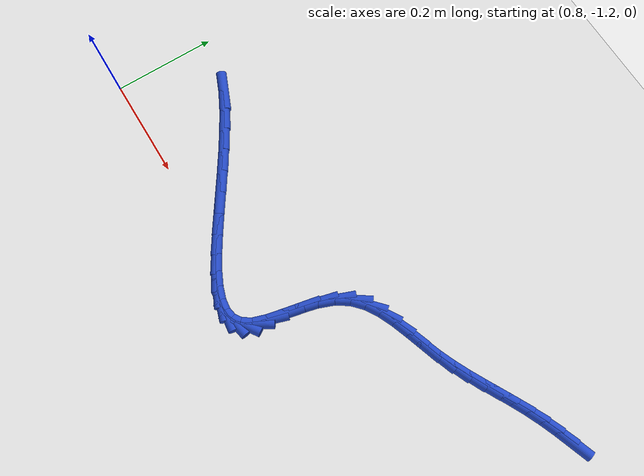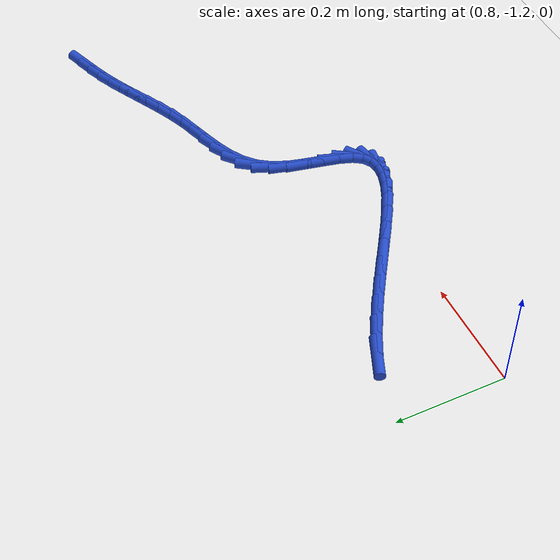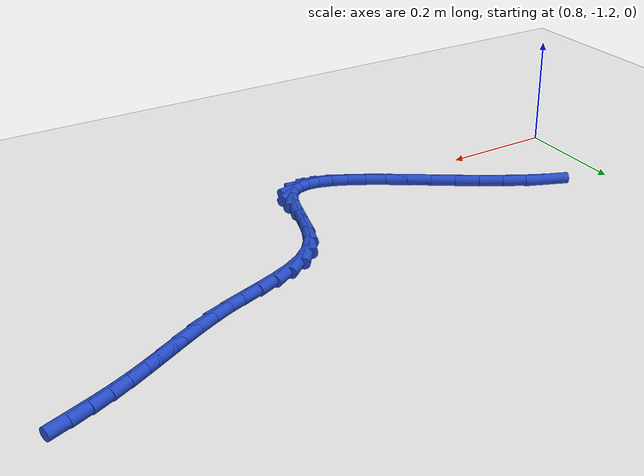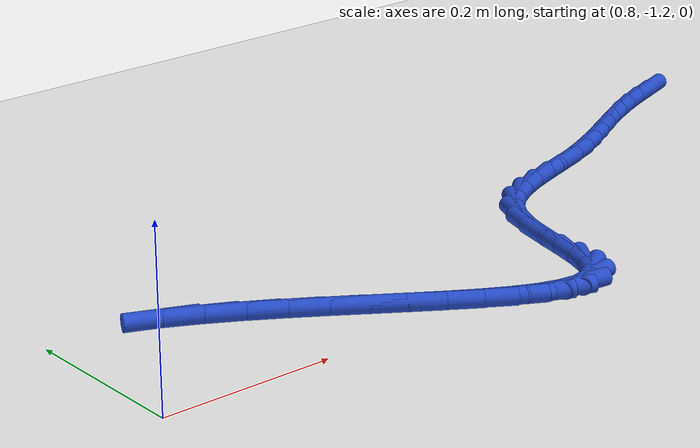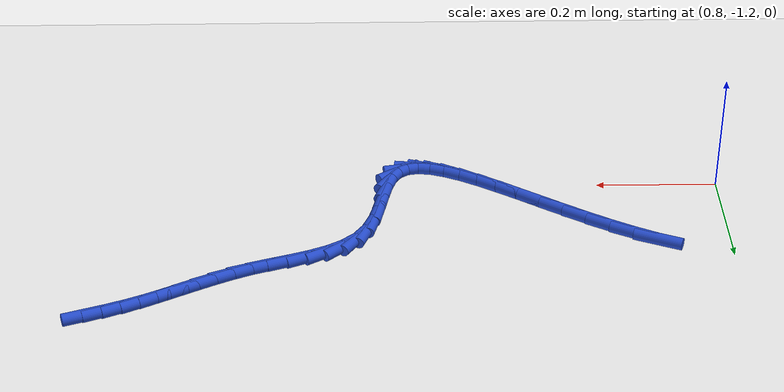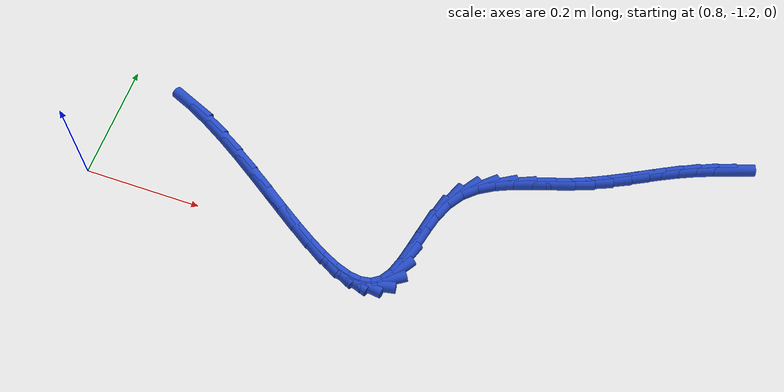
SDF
<sdf version="1.6">
 <world name="default">
  <model name="ground_plane">
   <static>1</static>
   <link name="link">
    <collision name="collision">
     <geometry><plane><normal>0 0 1</normal><size>100 100</size></plane></geometry>
     <surface><friction><ode><mu>100</mu><mu2>50</mu2></ode></friction></surface>
    </collision>
    <visual name="visual">
     <cast_shadows>0</cast_shadows>
     <geometry><plane><normal>0 0 1</normal><size>100 100</size></plane></geometry>
     <material>
      <script><uri>file://media/materials/scripts/gazebo.material</uri><name>Gazebo/WhiteGlow</name></script>
     </material>
    </visual>
   </link>
  </model>
  <model name="line">
   <link name="link_186">
    <pose>1.8090403899290732 -0.8524829123842519 0.01 0 1.57 0.3405348940985678</pose>
    <collision name="collision">
     <geometry><cylinder><radius>0.01</radius><length>0.08</length></cylinder></geometry>
    </collision>
    <visual name="visual">
     <material>
      <script><name>Gazebo/Blue</name><uri>file://media/materials/scripts/gazebo.material</uri></script>
     </material>
     <geometry><cylinder><radius>0.01</radius><length>0.08</length></cylinder></geometry>
    </visual>
   </link>
   <link name="link_187">
    <pose>1.7807709670203962 -0.8624998662626 0.01 0 1.57 0.37596260459092373</pose>
    <collision name="collision">
     <geometry><cylinder><radius>0.01</radius><length>0.08</length></cylinder></geometry>
    </collision>
    <visual name="visual">
     <material>
      <script><name>Gazebo/Blue</name><uri>file://media/materials/scripts/gazebo.material</uri></script>
     </material>
     <geometry><cylinder><radius>0.01</radius><length>0.08</length></cylinder></geometry>
    </visual>
   </link>
   <link name="link_188">
    <pose>1.75309380789799 -0.8734251134591424 0.01 0 1.57 0.42039869188526496</pose>
    <collision name="collision">
     <geometry><cylinder><radius>0.01</radius><length>0.08</length></cylinder></geometry>
    </collision>
    <visual name="visual">
     <material>
      <script><name>Gazebo/Blue</name><uri>file://media/materials/scripts/gazebo.material</uri></script>
     </material>
     <geometry><cylinder><radius>0.01</radius><length>0.08</length></cylinder></geometry>
    </visual>
   </link>
   <link name="link_189">
    <pose>1.726141239357196 -0.8854742816847162 0.01 0 1.57 0.46108970667561944</pose>
    <collision name="collision">
     <geometry><cylinder><radius>0.01</radius><length>0.08</length></cylinder></geometry>
    </collision>
    <visual name="visual">
     <material>
      <script><name>Gazebo/Blue</name><uri>file://media/materials/scripts/gazebo.material</uri></script>
     </material>
     <geometry><cylinder><radius>0.01</radius><length>0.08</length></cylinder></geometry>
    </visual>
   </link>
   <link name="link_190">
    <pose>1.6998155007914075 -0.898553084965715 0.01 0 1.57 0.4839831667987837</pose>
    <collision name="collision">
     <geometry><cylinder><radius>0.01</radius><length>0.08</length></cylinder></geometry>
    </collision>
    <visual name="visual">
     <material>
      <script><name>Gazebo/Blue</name><uri>file://media/materials/scripts/gazebo.material</uri></script>
     </material>
     <geometry><cylinder><radius>0.01</radius><length>0.08</length></cylinder></geometry>
    </visual>
   </link>
   <link name="link_191">
    <pose>1.6737767900728406 -0.9122412221752421 0.01 0 1.57 0.4881682200880346</pose>
    <collision name="collision">
     <geometry><cylinder><radius>0.01</radius><length>0.08</length></cylinder></geometry>
    </collision>
    <visual name="visual">
     <material>
      <script><name>Gazebo/Blue</name><uri>file://media/materials/scripts/gazebo.material</uri></script>
     </material>
     <geometry><cylinder><radius>0.01</radius><length>0.08</length></cylinder></geometry>
    </visual>
   </link>
   <link name="link_192">
    <pose>1.647673796580632 -0.9261028909487753 0.01 0 1.57 0.47385499838906864</pose>
    <collision name="collision">
     <geometry><cylinder><radius>0.01</radius><length>0.08</length></cylinder></geometry>
    </collision>
    <visual name="visual">
     <material>
      <script><name>Gazebo/Blue</name><uri>file://media/materials/scripts/gazebo.material</uri></script>
     </material>
     <geometry><cylinder><radius>0.01</radius><length>0.08</length></cylinder></geometry>
    </visual>
   </link>
   <link name="link_193">
    <pose>1.6211552096939186 -0.9397022889217923 0.01 0 1.57 0.44167411058087136</pose>
    <collision name="collision">
     <geometry><cylinder><radius>0.01</radius><length>0.08</length></cylinder></geometry>
    </collision>
    <visual name="visual">
     <material>
      <script><name>Gazebo/Blue</name><uri>file://media/materials/scripts/gazebo.material</uri></script>
     </material>
     <geometry><cylinder><radius>0.01</radius><length>0.08</length></cylinder></geometry>
    </visual>
   </link>
   <link name="link_194">
    <pose>1.5938697187918376 -0.9526036137297713 0.01 0 1.57 0.39276667069665266</pose>
    <collision name="collision">
     <geometry><cylinder><radius>0.01</radius><length>0.08</length></cylinder></geometry>
    </collision>
    <visual name="visual">
     <material>
      <script><name>Gazebo/Blue</name><uri>file://media/materials/scripts/gazebo.material</uri></script>
     </material>
     <geometry><cylinder><radius>0.01</radius><length>0.08</length></cylinder></geometry>
    </visual>
   </link>
   <link name="link_195">
    <pose>1.565466013253527 -0.9643710630081899 0.01 0 1.57 0.3367327698991211</pose>
    <collision name="collision">
     <geometry><cylinder><radius>0.01</radius><length>0.08</length></cylinder></geometry>
    </collision>
    <visual name="visual">
     <material>
      <script><name>Gazebo/Blue</name><uri>file://media/materials/scripts/gazebo.material</uri></script>
     </material>
     <geometry><cylinder><radius>0.01</radius><length>0.08</length></cylinder></geometry>
    </visual>
   </link>
   <link name="link_196">
    <pose>1.5357714834628167 -0.9747660800869554 0.01 0 1.57 0.31479687146298013</pose>
    <collision name="collision">
     <geometry><cylinder><radius>0.01</radius><length>0.08</length></cylinder></geometry>
    </collision>
    <visual name="visual">
     <material>
      <script><name>Gazebo/Blue</name><uri>file://media/materials/scripts/gazebo.material</uri></script>
     </material>
     <geometry><cylinder><radius>0.01</radius><length>0.08</length></cylinder></geometry>
    </visual>
   </link>
   <link name="link_197">
    <pose>1.5055662108398367 -0.9846016648071039 0.01 0 1.57 0.33881668592918013</pose>
    <collision name="collision">
     <geometry><cylinder><radius>0.01</radius><length>0.08</length></cylinder></geometry>
    </collision>
    <visual name="visual">
     <material>
      <script><name>Gazebo/Blue</name><uri>file://media/materials/scripts/gazebo.material</uri></script>
     </material>
     <geometry><cylinder><radius>0.01</radius><length>0.08</length></cylinder></geometry>
    </visual>
   </link>
   <link name="link_198">
    <pose>1.4759464820956838 -0.9950398364922757 0.01 0 1.57 0.41181750225858765</pose>
    <collision name="collision">
     <geometry><cylinder><radius>0.01</radius><length>0.08</length></cylinder></geometry>
    </collision>
    <visual name="visual">
     <material>
      <script><name>Gazebo/Blue</name><uri>file://media/materials/scripts/gazebo.material</uri></script>
     </material>
     <geometry><cylinder><radius>0.01</radius><length>0.08</length></cylinder></geometry>
    </visual>
   </link>
   <link name="link_199">
    <pose>1.448008792546071 -1.007242844718662 0.01 0 1.57 0.5414301348034276</pose>
    <collision name="collision">
     <geometry><cylinder><radius>0.01</radius><length>0.08</length></cylinder></geometry>
    </collision>
    <visual name="visual">
     <material>
      <script><name>Gazebo/Blue</name><uri>file://media/materials/scripts/gazebo.material</uri></script>
     </material>
     <geometry><cylinder><radius>0.01</radius><length>0.08</length></cylinder></geometry>
    </visual>
   </link>
   <link name="link_200">
    <pose>1.4228496375067106 -1.022372939062456 0.01 0 1.57 0.7344665954307845</pose>
    <collision name="collision">
     <geometry><cylinder><radius>0.01</radius><length>0.08</length></cylinder></geometry>
    </collision>
    <visual name="visual">
     <material>
      <script><name>Gazebo/Blue</name><uri>file://media/materials/scripts/gazebo.material</uri></script>
     </material>
     <geometry><cylinder><radius>0.01</radius><length>0.08</length></cylinder></geometry>
    </visual>
   </link>
   <link name="link_201">
    <pose>1.4015655122933177 -1.0415923690998499 0.01 0 1.57 0.9807676713733573</pose>
    <collision name="collision">
     <geometry><cylinder><radius>0.01</radius><length>0.08</length></cylinder></geometry>
    </collision>
    <visual name="visual">
     <material>
      <script><name>Gazebo/Blue</name><uri>file://media/materials/scripts/gazebo.material</uri></script>
     </material>
     <geometry><cylinder><radius>0.01</radius><length>0.08</length></cylinder></geometry>
    </visual>
   </link>
   <link name="link_202">
    <pose>1.3852140025979416 -1.0660122904480616 0.01 0 1.57 1.1932963166919919</pose>
    <collision name="collision">
     <geometry><cylinder><radius>0.01</radius><length>0.08</length></cylinder></geometry>
    </collision>
    <visual name="visual">
     <material>
      <script><name>Gazebo/Blue</name><uri>file://media/materials/scripts/gazebo.material</uri></script>
     </material>
     <geometry><cylinder><radius>0.01</radius><length>0.08</length></cylinder></geometry>
    </visual>
   </link>
   <link name="link_203">
    <pose>1.373653053310556 -1.095168556982549 0.01 0 1.57 1.313565672999608</pose>
    <collision name="collision">
     <geometry><cylinder><radius>0.01</radius><length>0.08</length></cylinder></geometry>
    </collision>
    <visual name="visual">
     <material>
      <script><name>Gazebo/Blue</name><uri>file://media/materials/scripts/gazebo.material</uri></script>
     </material>
     <geometry><cylinder><radius>0.01</radius><length>0.08</length></cylinder></geometry>
    </visual>
   </link>
   <link name="link_204">
    <pose>1.365342402619029 -1.126760975114106 0.01 0 1.57 1.3626435327485726</pose>
    <collision name="collision">
     <geometry><cylinder><radius>0.01</radius><length>0.08</length></cylinder></geometry>
    </collision>
    <visual name="visual">
     <material>
      <script><name>Gazebo/Blue</name><uri>file://media/materials/scripts/gazebo.material</uri></script>
     </material>
     <geometry><cylinder><radius>0.01</radius><length>0.08</length></cylinder></geometry>
    </visual>
   </link>
   <link name="link_205">
    <pose>1.3586628736141328 -1.1583857243264557 0.01 0 1.57 1.3466984402656768</pose>
    <collision name="collision">
     <geometry><cylinder><radius>0.01</radius><length>0.08</length></cylinder></geometry>
    </collision>
    <visual name="visual">
     <material>
      <script><name>Gazebo/Blue</name><uri>file://media/materials/scripts/gazebo.material</uri></script>
     </material>
     <geometry><cylinder><radius>0.01</radius><length>0.08</length></cylinder></geometry>
    </visual>
   </link>
   <link name="link_206">
    <pose>1.3519952893866405 -1.1876389841033235 0.01 0 1.57 1.2448051306956611</pose>
    <collision name="collision">
     <geometry><cylinder><radius>0.01</radius><length>0.08</length></cylinder></geometry>
    </collision>
    <visual name="visual">
     <material>
      <script><name>Gazebo/Blue</name><uri>file://media/materials/scripts/gazebo.material</uri></script>
     </material>
     <geometry><cylinder><radius>0.01</radius><length>0.08</length></cylinder></geometry>
    </visual>
   </link>
   <link name="link_207">
    <pose>1.3437204730273238 -1.2121169339284326 0.01 0 1.57 0.9922825573646661</pose>
    <collision name="collision">
     <geometry><cylinder><radius>0.01</radius><length>0.08</length></cylinder></geometry>
    </collision>
    <visual name="visual">
     <material>
      <script><name>Gazebo/Blue</name><uri>file://media/materials/scripts/gazebo.material</uri></script>
     </material>
     <geometry><cylinder><radius>0.01</radius><length>0.08</length></cylinder></geometry>
    </visual>
   </link>
   <link name="link_208">
    <pose>1.33231689613271 -1.2295790594457912 0.01 0 1.57 0.5905522786497456</pose>
    <collision name="collision">
     <geometry><cylinder><radius>0.01</radius><length>0.08</length></cylinder></geometry>
    </collision>
    <visual name="visual">
     <material>
      <script><name>Gazebo/Blue</name><uri>file://media/materials/scripts/gazebo.material</uri></script>
     </material>
     <geometry><cylinder><radius>0.01</radius><length>0.08</length></cylinder></geometry>
    </visual>
   </link>
   <link name="link_209">
    <pose>1.317354065386064 -1.2396094799624875 0.01 0 1.57 0.180078371744156</pose>
    <collision name="collision">
     <geometry><cylinder><radius>0.01</radius><length>0.08</length></cylinder></geometry>
    </collision>
    <visual name="visual">
     <material>
      <script><name>Gazebo/Blue</name><uri>file://media/materials/scripts/gazebo.material</uri></script>
     </material>
     <geometry><cylinder><radius>0.01</radius><length>0.08</length></cylinder></geometry>
    </visual>
   </link>
   <link name="link_210">
    <pose>1.299084978247817 -1.2429353763567592 0.01 0 1.57 -0.12296375834334676</pose>
    <collision name="collision">
     <geometry><cylinder><radius>0.01</radius><length>0.08</length></cylinder></geometry>
    </collision>
    <visual name="visual">
     <material>
      <script><name>Gazebo/Blue</name><uri>file://media/materials/scripts/gazebo.material</uri></script>
     </material>
     <geometry><cylinder><radius>0.01</radius><length>0.08</length></cylinder></geometry>
    </visual>
   </link>
   <link name="link_211">
    <pose>1.277773141149217 -1.2403015045804133 0.01 0 1.57 -0.31495567398860314</pose>
    <collision name="collision">
     <geometry><cylinder><radius>0.01</radius><length>0.08</length></cylinder></geometry>
    </collision>
    <visual name="visual">
     <material>
      <script><name>Gazebo/Blue</name><uri>file://media/materials/scripts/gazebo.material</uri></script>
     </material>
     <geometry><cylinder><radius>0.01</radius><length>0.08</length></cylinder></geometry>
    </visual>
   </link>
   <link name="link_212">
    <pose>1.2536820605215138 -1.2324526205852575 0.01 0 1.57 -0.43361766743839036</pose>
    <collision name="collision">
     <geometry><cylinder><radius>0.01</radius><length>0.08</length></cylinder></geometry>
    </collision>
    <visual name="visual">
     <material>
      <script><name>Gazebo/Blue</name><uri>file://media/materials/scripts/gazebo.material</uri></script>
     </material>
     <geometry><cylinder><radius>0.01</radius><length>0.08</length></cylinder></geometry>
    </visual>
   </link>
   <link name="link_213">
    <pose>1.2270752427959546 -1.2201334803230985 0.01 0 1.57 -0.507411849820914</pose>
    <collision name="collision">
     <geometry><cylinder><radius>0.01</radius><length>0.08</length></cylinder></geometry>
    </collision>
    <visual name="visual">
     <material>
      <script><name>Gazebo/Blue</name><uri>file://media/materials/scripts/gazebo.material</uri></script>
     </material>
     <geometry><cylinder><radius>0.01</radius><length>0.08</length></cylinder></geometry>
    </visual>
   </link>
   <link name="link_214">
    <pose>1.1982161944037881 -1.204088839745744 0.01 0 1.57 -0.5526452195897019</pose>
    <collision name="collision">
     <geometry><cylinder><radius>0.01</radius><length>0.08</length></cylinder></geometry>
    </collision>
    <visual name="visual">
     <material>
      <script><name>Gazebo/Blue</name><uri>file://media/materials/scripts/gazebo.material</uri></script>
     </material>
     <geometry><cylinder><radius>0.01</radius><length>0.08</length></cylinder></geometry>
    </visual>
   </link>
   <link name="link_215">
    <pose>1.1673684217762637 -1.1850634548050016 0.01 0 1.57 -0.5782920978550313</pose>
    <collision name="collision">
     <geometry><cylinder><radius>0.01</radius><length>0.08</length></cylinder></geometry>
    </collision>
    <visual name="visual">
     <material>
      <script><name>Gazebo/Blue</name><uri>file://media/materials/scripts/gazebo.material</uri></script>
     </material>
     <geometry><cylinder><radius>0.01</radius><length>0.08</length></cylinder></geometry>
    </visual>
   </link>
   <link name="link_216">
    <pose>1.1347954313446302 -1.1638020814526793 0.01 0 1.57 -0.5892790387262743</pose>
    <collision name="collision">
     <geometry><cylinder><radius>0.01</radius><length>0.08</length></cylinder></geometry>
    </collision>
    <visual name="visual">
     <material>
      <script><name>Gazebo/Blue</name><uri>file://media/materials/scripts/gazebo.material</uri></script>
     </material>
     <geometry><cylinder><radius>0.01</radius><length>0.08</length></cylinder></geometry>
    </visual>
   </link>
   <link name="link_217">
    <pose>1.1007607295401343 -1.1410494756405825 0.01 0 1.57 -0.5882084588769149</pose>
    <collision name="collision">
     <geometry><cylinder><radius>0.01</radius><length>0.08</length></cylinder></geometry>
    </collision>
    <visual name="visual">
     <material>
      <script><name>Gazebo/Blue</name><uri>file://media/materials/scripts/gazebo.material</uri></script>
     </material>
     <geometry><cylinder><radius>0.01</radius><length>0.08</length></cylinder></geometry>
    </visual>
   </link>
   <link name="link_218">
    <pose>1.065527822794025 -1.1175503933205193 0.01 0 1.57 -0.5762169770925324</pose>
    <collision name="collision">
     <geometry><cylinder><radius>0.01</radius><length>0.08</length></cylinder></geometry>
    </collision>
    <visual name="visual">
     <material>
      <script><name>Gazebo/Blue</name><uri>file://media/materials/scripts/gazebo.material</uri></script>
     </material>
     <geometry><cylinder><radius>0.01</radius><length>0.08</length></cylinder></geometry>
    </visual>
   </link>
   <link name="link_219">
    <pose>1.0293602175375516 -1.0940495904442975 0.01 0 1.57 -0.5533806334073249</pose>
    <collision name="collision">
     <geometry><cylinder><radius>0.01</radius><length>0.08</length></cylinder></geometry>
    </collision>
    <visual name="visual">
     <material>
      <script><name>Gazebo/Blue</name><uri>file://media/materials/scripts/gazebo.material</uri></script>
     </material>
     <geometry><cylinder><radius>0.01</radius><length>0.08</length></cylinder></geometry>
    </visual>
   </link>
   <link name="link_220">
    <pose>0.9925214202019621 -1.071291822963724 0.01 0 1.57 -0.5186983581841813</pose>
    <collision name="collision">
     <geometry><cylinder><radius>0.01</radius><length>0.08</length></cylinder></geometry>
    </collision>
    <visual name="visual">
     <material>
      <script><name>Gazebo/Blue</name><uri>file://media/materials/scripts/gazebo.material</uri></script>
     </material>
     <geometry><cylinder><radius>0.01</radius><length>0.08</length></cylinder></geometry>
    </visual>
   </link>
   <link name="link_221">
    <pose>0.955372515282804 -1.0500859366954285 0.01 0 1.57 -0.46867284763516304</pose>
    <collision name="collision">
     <geometry><cylinder><radius>0.01</radius><length>0.08</length></cylinder></geometry>
    </collision>
    <visual name="visual">
     <material>
      <script><name>Gazebo/Blue</name><uri>file://media/materials/scripts/gazebo.material</uri></script>
     </material>
     <geometry><cylinder><radius>0.01</radius><length>0.08</length></cylinder></geometry>
    </visual>
   </link>
   <link name="link_222">
    <pose>0.9186903364271538 -1.0315138440219003 0.01 0 1.57 -0.39632676649884363</pose>
    <collision name="collision">
     <geometry><cylinder><radius>0.01</radius><length>0.08</length></cylinder></geometry>
    </collision>
    <visual name="visual">
     <material>
      <script><name>Gazebo/Blue</name><uri>file://media/materials/scripts/gazebo.material</uri></script>
     </material>
     <geometry><cylinder><radius>0.01</radius><length>0.08</length></cylinder></geometry>
    </visual>
   </link>
  </model>
 </world>
</sdf>
